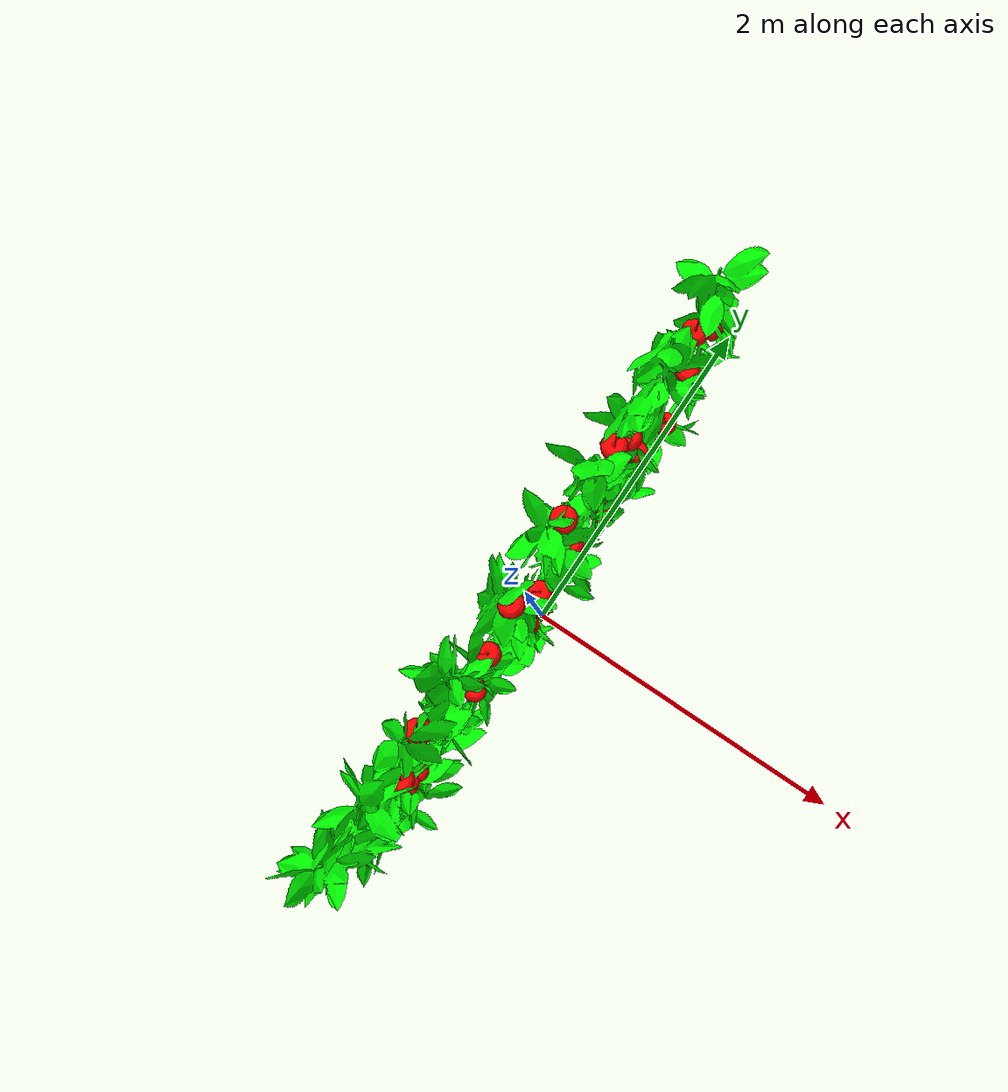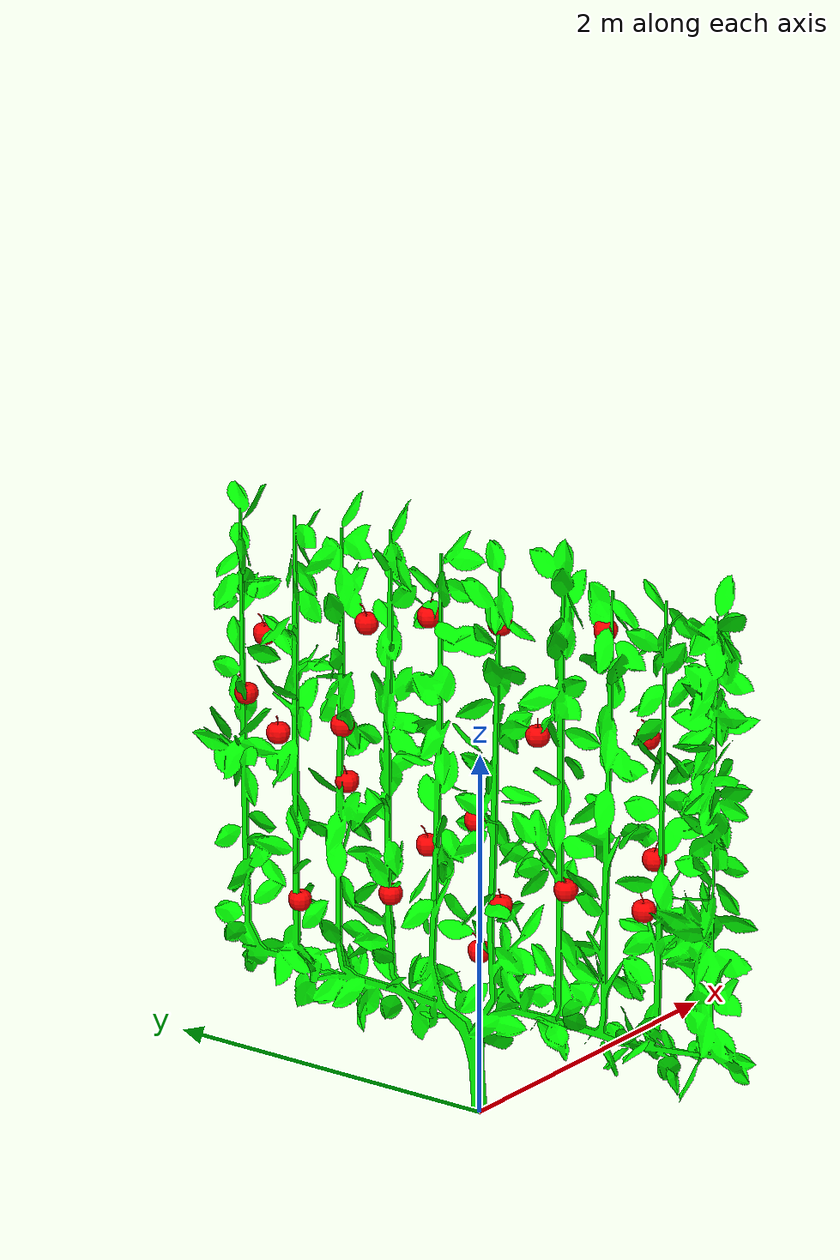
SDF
<?xml version="1.0" ?>
<sdf version="1.5">
  <model name="plant_full5">

    <include>
      <name>p1</name>
      <pose>0.0 0 0 0 0 0</pose>
      <uri>model://plant</uri>
    </include>

<include>
<name>a1</name>
<pose>0 -1.0067 1.4737 0 0 0.22858 </pose>
<uri>model://apple</uri>
</include>

<include>
<name>a2</name>
<pose>0 0.90935 1.7583 0 0 1.5913 </pose>
<uri>model://apple</uri>
</include>

<include>
<name>a3</name>
<pose>0 -0.11327 2.8297 0 0 2.1641 </pose>
<uri>model://apple</uri>
</include>

<include>
<name>a4</name>
<pose>0 -0.74153 2.9345 0 0 0.7937 </pose>
<uri>model://apple</uri>
</include>

<include>
<name>a5</name>
<pose>0 1.5933 2.1196 0 0 1.0627 </pose>
<uri>model://apple</uri>
</include>

<include>
<name>a6</name>
<pose>0 0.029079 1.7239 0 0 2.3602 </pose>
<uri>model://apple</uri>
</include>

<include>
<name>a7</name>
<pose>0 0.63507 1.1923 0 0 1.0624 </pose>
<uri>model://apple</uri>
</include>

<include>
<name>a8</name>
<pose>0 1.3407 1.9372 0 0 2.2577 </pose>
<uri>model://apple</uri>
</include>

<include>
<name>a9</name>
<pose>0 -0.50421 1.4709 0 0 0.64684 </pose>
<uri>model://apple</uri>
</include>

<include>
<name>a10</name>
<pose>0 0.78467 2.6756 0 0 0.55793 </pose>
<uri>model://apple</uri>
</include>

<include>
<name>a11</name>
<pose>0 -0.11738 1.2824 0 0 2.096 </pose>
<uri>model://apple</uri>
</include>

<include>
<name>a12</name>
<pose>0 1.4605 2.4875 0 0 0.46351 </pose>
<uri>model://apple</uri>
</include>

<include>
<name>a13</name>
<pose>0 0.38757 1.5281 0 0 0.57799 </pose>
<uri>model://apple</uri>
</include>

<include>
<name>a14</name>
<pose>0 -0.36708 2.2735 0 0 2.4424 </pose>
<uri>model://apple</uri>
</include>

<include>
<name>a15</name>
<pose>0 1.2411 1.0231 0 0 1.1366 </pose>
<uri>model://apple</uri>
</include>

<include>
<name>a16</name>
<pose>0 0.051528 1.0009 0 0 0.9322 </pose>
<uri>model://apple</uri>
</include>

<include>
<name>a17</name>
<pose>0 0.30642 2.7921 0 0 2.9866 </pose>
<uri>model://apple</uri>
</include>

<include>
<name>a18</name>
<pose>0 0.93875 2.0847 0 0 0.18366 </pose>
<uri>model://apple</uri>
</include>

<include>
<name>a19</name>
<pose>0 -1.0169 2.4039 0 0 1.2598 </pose>
<uri>model://apple</uri>
</include>

<include>
<name>a20</name>
<pose>0 -1.1339 1.7612 0 0 2.9777 </pose>
<uri>model://apple</uri>
</include>

  </model>
</sdf>

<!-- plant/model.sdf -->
<sdf version="1.5">
  <model name="plant">
    <static>true</static>
    <link name="link">
      <pose>0 0 0 0 0 0</pose>
      <visual name="visual">
        <geometry>
          <mesh>
            <uri>model://plant/meshes/plant.stl</uri>
          </mesh>
        </geometry>
        <material>
          <ambient>0 1 0 1</ambient>
          <diffuse>0 1 0 1</diffuse>
          <specular>0.1 0.1 0.1 1</specular>
          <emissive>0 0 0 0</emissive>
        </material>
      </visual>
    </link>
  </model>
</sdf>

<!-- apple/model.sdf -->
<sdf version="1.5">
  <model name="apple">
    <static>true</static>
    <link name="link">
      <pose>0 0 0 0 0 0</pose>
      <visual name="visual">
        <geometry>
          <mesh>
            <uri>model://apple/meshes/apple.stl</uri>
            <scale>0.5 0.5 0.5</scale>
          </mesh>
        </geometry>
        <material>
          <ambient>1 0 0 1</ambient>
          <diffuse>1 0 0 1</diffuse>
          <specular>0.1 0.1 0.1 1</specular>
          <emissive>0 0 0 0</emissive>
        </material>
      </visual>
    </link>
  </model>
</sdf>
